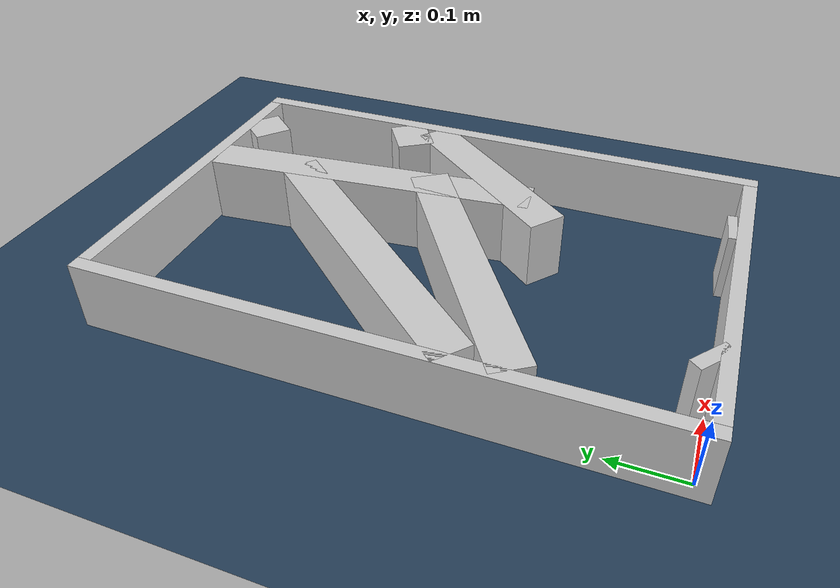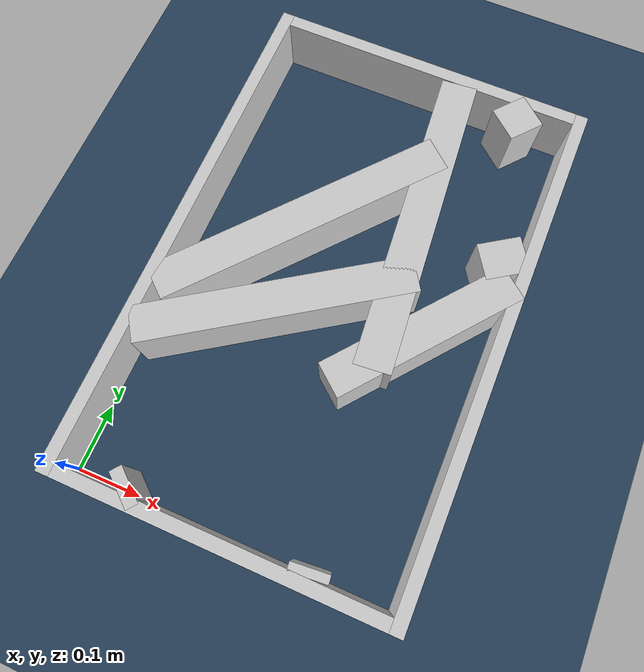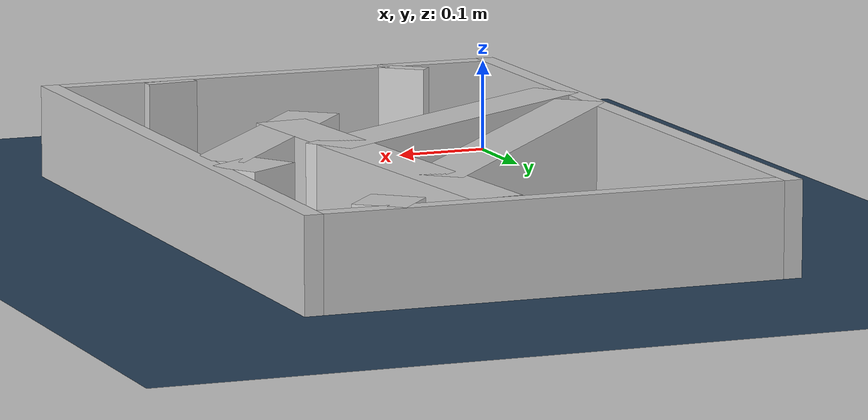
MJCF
<?xml version="1.0" ?>
<mujoco model="generated_real_template">
  <compiler angle="degree"/>
  <option timestep="0.002" integrator="implicitfast" iterations="100" cone="elliptic"/>
  <default>
    <geom density="1"/>
  </default>
  <asset>
    <texture builtin="gradient" height="3072" rgb1="0.3 0.5 0.7" rgb2="0 0 0" type="skybox" width="512"/>
    <texture builtin="checker" height="300" mark="edge" markrgb="0.8 0.8 0.8" name="groundplane" rgb1="0.2 0.3 0.4" rgb2="0.1 0.2 0.3" type="2d" width="300"/>
    <material name="groundplane" reflectance="0.2" texrepeat="5 5" texture="groundplane" texuniform="true"/>
  </asset>
  <worldbody>
    <light dir="0 0 -1" directional="true" pos="0 0 1.5"/>
    <geom name="floor" type="plane" condim="4" friction="0.5 0.005 0.001" material="groundplane" size="0 0 0.05"/>
    <body name="walls">
      <geom name="wall_boundary_left" type="box" condim="4" friction="1.0 0.005 0.0001" rgba="0.8 0.8 0.8 1" pos="-0.010000 0.387500 0.050000" euler="0 0 0.000000" size="0.010000 0.407500 0.050000"/>
      <geom name="wall_boundary_right" type="box" condim="4" friction="1.0 0.005 0.0001" rgba="0.8 0.8 0.8 1" pos="0.500000 0.387500 0.050000" euler="0 0 0.000000" size="0.010000 0.407500 0.050000"/>
      <geom name="wall_boundary_bottom" type="box" condim="4" friction="1.0 0.005 0.0001" rgba="0.8 0.8 0.8 1" pos="0.245000 -0.010000 0.050000" euler="0 0 0.000000" size="0.245000 0.010000 0.050000"/>
      <geom name="wall_boundary_top" type="box" condim="4" friction="1.0 0.005 0.0001" rgba="0.8 0.8 0.8 1" pos="0.245000 0.785000 0.050000" euler="0 0 0.000000" size="0.245000 0.010000 0.050000"/>
      <geom name="wall_inner_1_1" type="box" condim="4" friction="1.0 0.005 0.0001" rgba="0.8 0.8 0.8 1" pos="0.390714 0.365836 0.050000" euler="0 0 -129.017033" size="0.154302 0.028500 0.050000"/>
      <geom name="wall_inner_1_2" type="box" condim="4" friction="1.0 0.005 0.0001" rgba="0.8 0.8 0.8 1" pos="0.100254 0.007365 0.050000" euler="0 0 -129.017033" size="0.009479 0.028500 0.050000"/>
      <geom name="wall_inner_2_1" type="box" condim="4" friction="1.0 0.005 0.0001" rgba="0.8 0.8 0.8 1" pos="0.461620 0.516381 0.050000" euler="0 0 -146.448119" size="0.034054 0.028500 0.050000"/>
      <geom name="wall_inner_2_2" type="box" condim="4" friction="1.0 0.005 0.0001" rgba="0.8 0.8 0.8 1" pos="0.176070 0.327008 0.050000" euler="0 0 -146.448119" size="0.211271 0.028500 0.050000"/>
      <geom name="wall_inner_3_1" type="box" condim="4" friction="1.0 0.005 0.0001" rgba="0.8 0.8 0.8 1" pos="0.322905 0.529586 0.050000" euler="0 0 -84.845588" size="0.246411 0.028500 0.050000"/>
      <geom name="wall_inner_3_2" type="box" condim="4" friction="1.0 0.005 0.0001" rgba="0.8 0.8 0.8 1" pos="0.370098 0.006413 0.050000" euler="0 0 -84.845588" size="0.006439 0.028500 0.050000"/>
      <geom name="wall_inner_4_1" type="box" condim="4" friction="1.0 0.005 0.0001" rgba="0.8 0.8 0.8 1" pos="0.157099 0.462043 0.050000" euler="0 0 49.466748" size="0.239175 0.028500 0.050000"/>
      <geom name="wall_inner_4_2" type="box" condim="4" friction="1.0 0.005 0.0001" rgba="0.8 0.8 0.8 1" pos="0.405922 0.753035 0.050000" euler="0 0 49.466748" size="0.028900 0.028500 0.050000"/>
    </body>
  </worldbody>
</mujoco>
